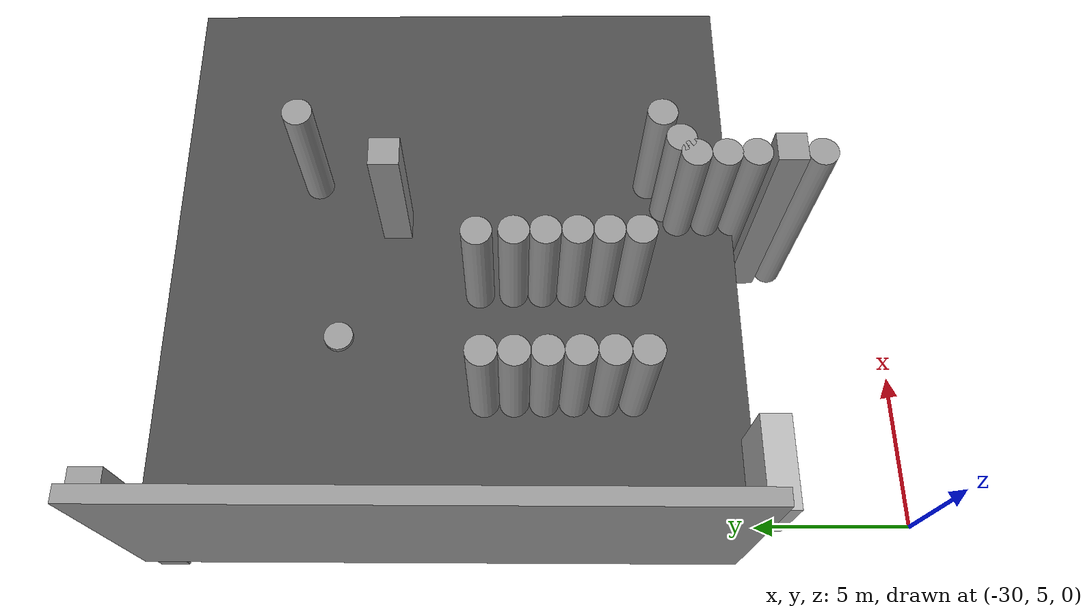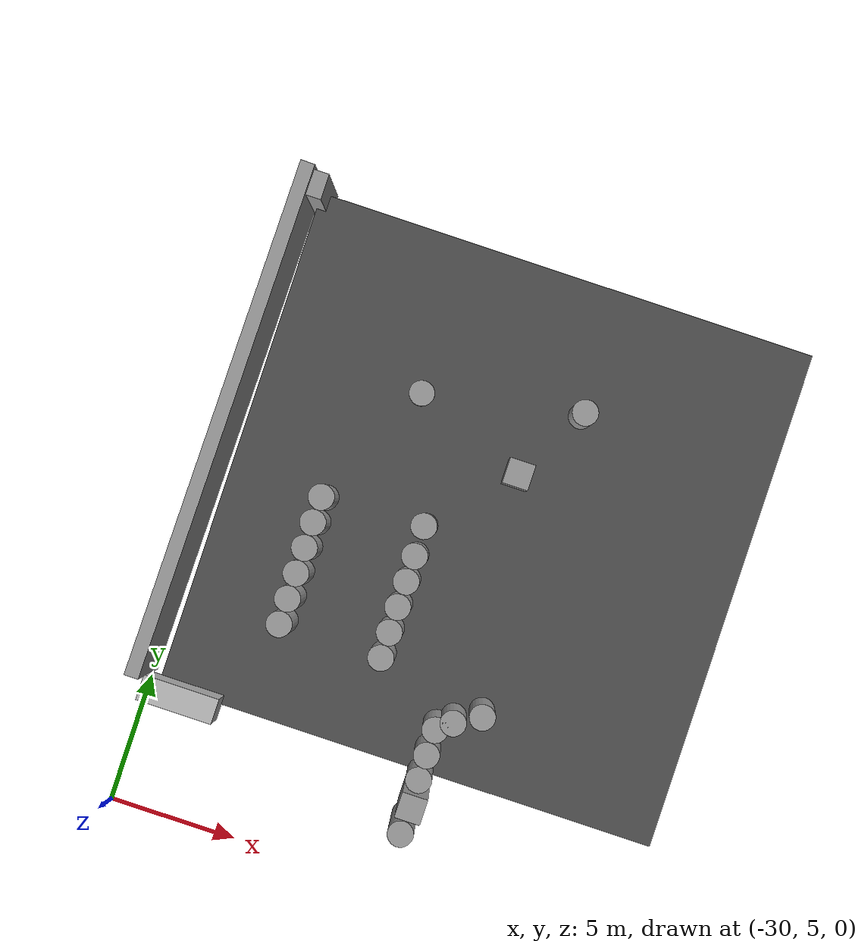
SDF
<sdf version="1.6">
 <model name="MW_world_1_0_0">
  <link name="link_0">
   <pose>-23.5387 23.6273 0.5 0 -0 0</pose>
   <inertial>
    <mass>0.190242</mass>
    <inertia>
     <ixx>0.0124639</ixx>
     <ixy>0</ixy>
     <ixz>0</ixz>
     <iyy>0.0124639</iyy>
     <iyz>0</iyz>
     <izz>0.0237802</izz>
    </inertia>
   </inertial>
   <visual name="visual">
    <geometry><cylinder><radius>0.5</radius><length>0.190241</length></cylinder></geometry>
    <material>
     <lighting>1</lighting>
     <script><uri>file://media/materials/scripts/gazebo.material</uri><name>Gazebo/Grey</name></script>
     <ambient>0.3 0.3 0.3 1</ambient>
     <diffuse>0.7 0.7 0.7 1</diffuse>
     <specular>0.01 0.01 0.01 1</specular>
     <emissive>0 0 0 1</emissive>
    </material>
   </visual>
   <collision name="collision">
    <geometry><cylinder><radius>0.5</radius><length>0.190241</length></cylinder></geometry>
    <surface>
     <friction>
      <ode><mu>1</mu><mu2>1</mu2><fdir1>0 0 0</fdir1><slip1>0</slip1><slip2>0</slip2></ode>
      <torsional>
       <coefficient>1</coefficient>
       <patch_radius>0</patch_radius>
       <surface_radius>0</surface_radius>
       <use_patch_radius>1</use_patch_radius>
       <ode><slip>0</slip></ode>
      </torsional>
     </friction>
     <bounce><restitution_coefficient>0</restitution_coefficient><threshold>1e+06</threshold></bounce>
     <contact>
      <collide_without_contact>0</collide_without_contact>
      <collide_without_contact_bitmask>1</collide_without_contact_bitmask>
      <collide_bitmask>1</collide_bitmask>
      <ode>
       <soft_cfm>0</soft_cfm>
       <soft_erp>0.2</soft_erp>
       <kp>1e+13</kp>
       <kd>1</kd>
       <max_vel>0.01</max_vel>
       <min_depth>0</min_depth>
      </ode>
      <bullet>
       <split_impulse>1</split_impulse>
       <split_impulse_penetration_threshold>-0.01</split_impulse_penetration_threshold>
       <soft_cfm>0</soft_cfm>
       <soft_erp>0.2</soft_erp>
       <kp>1e+13</kp>
       <kd>1</kd>
      </bullet>
     </contact>
    </surface>
   </collision>
  </link>
  <link name="link_0_0_clone_5_clone_0">
   <pose>-17.483 12.7321 0.5 0 -0 0</pose>
   <inertial>
    <mass>9.05819</mass>
    <inertia><ixx>62.5018</ixx><ixy>0</ixy><ixz>0</ixz><iyy>62.5018</iyy><iyz>0</iyz><izz>1.13227</izz></inertia>
   </inertial>
   <visual name="visual_0">
    <geometry><cylinder><radius>0.5</radius><length>9.05819</length></cylinder></geometry>
    <material>
     <lighting>1</lighting>
     <script><uri>file://media/materials/scripts/gazebo.material</uri><name>Gazebo/Grey</name></script>
     <ambient>0.3 0.3 0.3 1</ambient>
     <diffuse>0.7 0.7 0.7 1</diffuse>
     <specular>0.01 0.01 0.01 1</specular>
     <emissive>0 0 0 1</emissive>
     <shader type="pixel"/>
    </material>
   </visual>
   <collision name="collision">
    <geometry><cylinder><radius>0.5</radius><length>9.05819</length></cylinder></geometry>
    <surface>
     <friction>
      <ode><mu>1</mu><mu2>1</mu2><fdir1>0 0 0</fdir1><slip1>0</slip1><slip2>0</slip2></ode>
      <torsional>
       <coefficient>1</coefficient>
       <patch_radius>0</patch_radius>
       <surface_radius>0</surface_radius>
       <use_patch_radius>1</use_patch_radius>
       <ode><slip>0</slip></ode>
      </torsional>
     </friction>
     <bounce><restitution_coefficient>0</restitution_coefficient><threshold>1e+06</threshold></bounce>
     <contact>
      <collide_without_contact>0</collide_without_contact>
      <collide_without_contact_bitmask>1</collide_without_contact_bitmask>
      <collide_bitmask>1</collide_bitmask>
      <ode>
       <soft_cfm>0</soft_cfm>
       <soft_erp>0.2</soft_erp>
       <kp>1e+13</kp>
       <kd>1</kd>
       <max_vel>0.01</max_vel>
       <min_depth>0</min_depth>
      </ode>
      <bullet>
       <split_impulse>1</split_impulse>
       <split_impulse_penetration_threshold>-0.01</split_impulse_penetration_threshold>
       <soft_cfm>0</soft_cfm>
       <soft_erp>0.2</soft_erp>
       <kp>1e+13</kp>
       <kd>1</kd>
      </bullet>
     </contact>
    </surface>
   </collision>
  </link>
  <link name="link_0_0_clone_5_clone_1">
   <pose>-18.4513 12.18 0.5 0 -0 0</pose>
   <inertial>
    <mass>9.05819</mass>
    <inertia><ixx>62.5018</ixx><ixy>0</ixy><ixz>0</ixz><iyy>62.5018</iyy><iyz>0</iyz><izz>1.13227</izz></inertia>
   </inertial>
   <visual name="visual_0">
    <geometry><cylinder><radius>0.5</radius><length>9.05819</length></cylinder></geometry>
    <material>
     <lighting>1</lighting>
     <script><uri>file://media/materials/scripts/gazebo.material</uri><name>Gazebo/Grey</name></script>
     <ambient>0.3 0.3 0.3 1</ambient>
     <diffuse>0.7 0.7 0.7 1</diffuse>
     <specular>0.01 0.01 0.01 1</specular>
     <emissive>0 0 0 1</emissive>
     <shader type="pixel"/>
    </material>
   </visual>
   <collision name="collision">
    <geometry><cylinder><radius>0.5</radius><length>9.05819</length></cylinder></geometry>
    <surface>
     <friction>
      <ode><mu>1</mu><mu2>1</mu2><fdir1>0 0 0</fdir1><slip1>0</slip1><slip2>0</slip2></ode>
      <torsional>
       <coefficient>1</coefficient>
       <patch_radius>0</patch_radius>
       <surface_radius>0</surface_radius>
       <use_patch_radius>1</use_patch_radius>
       <ode><slip>0</slip></ode>
      </torsional>
     </friction>
     <bounce><restitution_coefficient>0</restitution_coefficient><threshold>1e+06</threshold></bounce>
     <contact>
      <collide_without_contact>0</collide_without_contact>
      <collide_without_contact_bitmask>1</collide_without_contact_bitmask>
      <collide_bitmask>1</collide_bitmask>
      <ode>
       <soft_cfm>0</soft_cfm>
       <soft_erp>0.2</soft_erp>
       <kp>1e+13</kp>
       <kd>1</kd>
       <max_vel>0.01</max_vel>
       <min_depth>0</min_depth>
      </ode>
      <bullet>
       <split_impulse>1</split_impulse>
       <split_impulse_penetration_threshold>-0.01</split_impulse_penetration_threshold>
       <soft_cfm>0</soft_cfm>
       <soft_erp>0.2</soft_erp>
       <kp>1e+13</kp>
       <kd>1</kd>
      </bullet>
     </contact>
    </surface>
   </collision>
  </link>
  <link name="link_0_0_clone_5_clone_16">
   <pose>-17.4246 24.7321 0.5 0 -0 0</pose>
   <inertial>
    <mass>9.05819</mass>
    <inertia><ixx>62.5018</ixx><ixy>0</ixy><ixz>0</ixz><iyy>62.5018</iyy><iyz>0</iyz><izz>1.13227</izz></inertia>
   </inertial>
   <visual name="visual_0">
    <geometry><cylinder><radius>0.5</radius><length>9.05819</length></cylinder></geometry>
    <material>
     <lighting>1</lighting>
     <script><uri>file://media/materials/scripts/gazebo.material</uri><name>Gazebo/Grey</name></script>
     <ambient>0.3 0.3 0.3 1</ambient>
     <diffuse>0.7 0.7 0.7 1</diffuse>
     <specular>0.01 0.01 0.01 1</specular>
     <emissive>0 0 0 1</emissive>
     <shader type="pixel"/>
    </material>
   </visual>
   <collision name="collision">
    <geometry><cylinder><radius>0.5</radius><length>9.05819</length></cylinder></geometry>
    <surface>
     <friction>
      <ode><mu>1</mu><mu2>1</mu2><fdir1>0 0 0</fdir1><slip1>0</slip1><slip2>0</slip2></ode>
      <torsional>
       <coefficient>1</coefficient>
       <patch_radius>0</patch_radius>
       <surface_radius>0</surface_radius>
       <use_patch_radius>1</use_patch_radius>
       <ode><slip>0</slip></ode>
      </torsional>
     </friction>
     <bounce><restitution_coefficient>0</restitution_coefficient><threshold>1e+06</threshold></bounce>
     <contact>
      <collide_without_contact>0</collide_without_contact>
      <collide_without_contact_bitmask>1</collide_without_contact_bitmask>
      <collide_bitmask>1</collide_bitmask>
      <ode>
       <soft_cfm>0</soft_cfm>
       <soft_erp>0.2</soft_erp>
       <kp>1e+13</kp>
       <kd>1</kd>
       <max_vel>0.01</max_vel>
       <min_depth>0</min_depth>
      </ode>
      <bullet>
       <split_impulse>1</split_impulse>
       <split_impulse_penetration_threshold>-0.01</split_impulse_penetration_threshold>
       <soft_cfm>0</soft_cfm>
       <soft_erp>0.2</soft_erp>
       <kp>1e+13</kp>
       <kd>1</kd>
      </bullet>
     </contact>
    </surface>
   </collision>
  </link>
  <link name="link_0_0_clone_5_clone_9">
   <pose>-19.0194 7.64675 0.5 0 -0 0</pose>
   <inertial>
    <mass>9.05819</mass>
    <inertia><ixx>62.5018</ixx><ixy>0</ixy><ixz>0</ixz><iyy>62.5018</iyy><iyz>0</iyz><izz>1.13227</izz></inertia>
   </inertial>
   <visual name="visual_0">
    <geometry><cylinder><radius>0.5</radius><length>9.05819</length></cylinder></geometry>
    <material>
     <lighting>1</lighting>
     <script><uri>file://media/materials/scripts/gazebo.material</uri><name>Gazebo/Grey</name></script>
     <ambient>0.3 0.3 0.3 1</ambient>
     <diffuse>0.7 0.7 0.7 1</diffuse>
     <specular>0.01 0.01 0.01 1</specular>
     <emissive>0 0 0 1</emissive>
     <shader type="pixel"/>
    </material>
   </visual>
   <collision name="collision">
    <geometry><cylinder><radius>0.5</radius><length>9.05819</length></cylinder></geometry>
    <surface>
     <friction>
      <ode><mu>1</mu><mu2>1</mu2><fdir1>0 0 0</fdir1><slip1>0</slip1><slip2>0</slip2></ode>
      <torsional>
       <coefficient>1</coefficient>
       <patch_radius>0</patch_radius>
       <surface_radius>0</surface_radius>
       <use_patch_radius>1</use_patch_radius>
       <ode><slip>0</slip></ode>
      </torsional>
     </friction>
     <bounce><restitution_coefficient>0</restitution_coefficient><threshold>1e+06</threshold></bounce>
     <contact>
      <collide_without_contact>0</collide_without_contact>
      <collide_without_contact_bitmask>1</collide_without_contact_bitmask>
      <collide_bitmask>1</collide_bitmask>
      <ode>
       <soft_cfm>0</soft_cfm>
       <soft_erp>0.2</soft_erp>
       <kp>1e+13</kp>
       <kd>1</kd>
       <max_vel>0.01</max_vel>
       <min_depth>0</min_depth>
      </ode>
      <bullet>
       <split_impulse>1</split_impulse>
       <split_impulse_penetration_threshold>-0.01</split_impulse_penetration_threshold>
       <soft_cfm>0</soft_cfm>
       <soft_erp>0.2</soft_erp>
       <kp>1e+13</kp>
       <kd>1</kd>
      </bullet>
     </contact>
    </surface>
   </collision>
  </link>
  <link name="link_0_0_clone_5_clone_9_clone_18">
   <pose>-19.0181 11.7321 0.5 0 -0 0</pose>
   <inertial>
    <mass>9.05819</mass>
    <inertia><ixx>62.5018</ixx><ixy>0</ixy><ixz>0</ixz><iyy>62.5018</iyy><iyz>0</iyz><izz>1.13227</izz></inertia>
   </inertial>
   <visual name="visual_0">
    <geometry><cylinder><radius>0.5</radius><length>9.05819</length></cylinder></geometry>
    <material>
     <lighting>1</lighting>
     <script><uri>file://media/materials/scripts/gazebo.material</uri><name>Gazebo/Grey</name></script>
     <ambient>0.3 0.3 0.3 1</ambient>
     <diffuse>0.7 0.7 0.7 1</diffuse>
     <specular>0.01 0.01 0.01 1</specular>
     <emissive>0 0 0 1</emissive>
     <shader type="pixel"/>
    </material>
   </visual>
   <collision name="collision">
    <geometry><cylinder><radius>0.5</radius><length>9.05819</length></cylinder></geometry>
    <surface>
     <friction>
      <ode><mu>1</mu><mu2>1</mu2><fdir1>0 0 0</fdir1><slip1>0</slip1><slip2>0</slip2></ode>
      <torsional>
       <coefficient>1</coefficient>
       <patch_radius>0</patch_radius>
       <surface_radius>0</surface_radius>
       <use_patch_radius>1</use_patch_radius>
       <ode><slip>0</slip></ode>
      </torsional>
     </friction>
     <bounce><restitution_coefficient>0</restitution_coefficient><threshold>1e+06</threshold></bounce>
     <contact>
      <collide_without_contact>0</collide_without_contact>
      <collide_without_contact_bitmask>1</collide_without_contact_bitmask>
      <collide_bitmask>1</collide_bitmask>
      <ode>
       <soft_cfm>0</soft_cfm>
       <soft_erp>0.2</soft_erp>
       <kp>1e+13</kp>
       <kd>1</kd>
       <max_vel>0.01</max_vel>
       <min_depth>0</min_depth>
      </ode>
      <bullet>
       <split_impulse>1</split_impulse>
       <split_impulse_penetration_threshold>-0.01</split_impulse_penetration_threshold>
       <soft_cfm>0</soft_cfm>
       <soft_erp>0.2</soft_erp>
       <kp>1e+13</kp>
       <kd>1</kd>
      </bullet>
     </contact>
    </surface>
   </collision>
  </link>
  <link name="link_0_0_clone_5_clone_9_clone_19">
   <pose>-19.0181 10.7321 0.5 0 -0 0</pose>
   <inertial>
    <mass>9.05819</mass>
    <inertia><ixx>62.5018</ixx><ixy>0</ixy><ixz>0</ixz><iyy>62.5018</iyy><iyz>0</iyz><izz>1.13227</izz></inertia>
   </inertial>
   <visual name="visual_0">
    <geometry><cylinder><radius>0.5</radius><length>9.05819</length></cylinder></geometry>
    <material>
     <lighting>1</lighting>
     <script><uri>file://media/materials/scripts/gazebo.material</uri><name>Gazebo/Grey</name></script>
     <ambient>0.3 0.3 0.3 1</ambient>
     <diffuse>0.7 0.7 0.7 1</diffuse>
     <specular>0.01 0.01 0.01 1</specular>
     <emissive>0 0 0 1</emissive>
     <shader type="pixel"/>
    </material>
   </visual>
   <collision name="collision">
    <geometry><cylinder><radius>0.5</radius><length>9.05819</length></cylinder></geometry>
    <surface>
     <friction>
      <ode><mu>1</mu><mu2>1</mu2><fdir1>0 0 0</fdir1><slip1>0</slip1><slip2>0</slip2></ode>
      <torsional>
       <coefficient>1</coefficient>
       <patch_radius>0</patch_radius>
       <surface_radius>0</surface_radius>
       <use_patch_radius>1</use_patch_radius>
       <ode><slip>0</slip></ode>
      </torsional>
     </friction>
     <bounce><restitution_coefficient>0</restitution_coefficient><threshold>1e+06</threshold></bounce>
     <contact>
      <collide_without_contact>0</collide_without_contact>
      <collide_without_contact_bitmask>1</collide_without_contact_bitmask>
      <collide_bitmask>1</collide_bitmask>
      <ode>
       <soft_cfm>0</soft_cfm>
       <soft_erp>0.2</soft_erp>
       <kp>1e+13</kp>
       <kd>1</kd>
       <max_vel>0.01</max_vel>
       <min_depth>0</min_depth>
      </ode>
      <bullet>
       <split_impulse>1</split_impulse>
       <split_impulse_penetration_threshold>-0.01</split_impulse_penetration_threshold>
       <soft_cfm>0</soft_cfm>
       <soft_erp>0.2</soft_erp>
       <kp>1e+13</kp>
       <kd>1</kd>
      </bullet>
     </contact>
    </surface>
   </collision>
  </link>
  <link name="link_0_0_clone_5_clone_9_clone_20">
   <pose>-19.0135 9.76944 0.5 0 -0 0</pose>
   <inertial>
    <mass>9.05819</mass>
    <inertia><ixx>62.5018</ixx><ixy>0</ixy><ixz>0</ixz><iyy>62.5018</iyy><iyz>0</iyz><izz>1.13227</izz></inertia>
   </inertial>
   <visual name="visual_0">
    <geometry><cylinder><radius>0.5</radius><length>9.05819</length></cylinder></geometry>
    <material>
     <lighting>1</lighting>
     <script><uri>file://media/materials/scripts/gazebo.material</uri><name>Gazebo/Grey</name></script>
     <ambient>0.3 0.3 0.3 1</ambient>
     <diffuse>0.7 0.7 0.7 1</diffuse>
     <specular>0.01 0.01 0.01 1</specular>
     <emissive>0 0 0 1</emissive>
     <shader type="pixel"/>
    </material>
   </visual>
   <collision name="collision">
    <geometry><cylinder><radius>0.5</radius><length>9.05819</length></cylinder></geometry>
    <surface>
     <friction>
      <ode><mu>1</mu><mu2>1</mu2><fdir1>0 0 0</fdir1><slip1>0</slip1><slip2>0</slip2></ode>
      <torsional>
       <coefficient>1</coefficient>
       <patch_radius>0</patch_radius>
       <surface_radius>0</surface_radius>
       <use_patch_radius>1</use_patch_radius>
       <ode><slip>0</slip></ode>
      </torsional>
     </friction>
     <bounce><restitution_coefficient>0</restitution_coefficient><threshold>1e+06</threshold></bounce>
     <contact>
      <collide_without_contact>0</collide_without_contact>
      <collide_without_contact_bitmask>1</collide_without_contact_bitmask>
      <collide_bitmask>1</collide_bitmask>
      <ode>
       <soft_cfm>0</soft_cfm>
       <soft_erp>0.2</soft_erp>
       <kp>1e+13</kp>
       <kd>1</kd>
       <max_vel>0.01</max_vel>
       <min_depth>0</min_depth>
      </ode>
      <bullet>
       <split_impulse>1</split_impulse>
       <split_impulse_penetration_threshold>-0.01</split_impulse_penetration_threshold>
       <soft_cfm>0</soft_cfm>
       <soft_erp>0.2</soft_erp>
       <kp>1e+13</kp>
       <kd>1</kd>
      </bullet>
     </contact>
    </surface>
   </collision>
  </link>
  <link name="link_0_0_clone_6">
   <pose>-21.8116 18.818 0.5 0 -0 0</pose>
   <inertial>
    <mass>9.05819</mass>
    <inertia><ixx>62.5018</ixx><ixy>0</ixy><ixz>0</ixz><iyy>62.5018</iyy><iyz>0</iyz><izz>1.13227</izz></inertia>
   </inertial>
   <visual name="visual_0">
    <geometry><cylinder><radius>0.5</radius><length>9.05819</length></cylinder></geometry>
    <material>
     <lighting>1</lighting>
     <script><uri>file://media/materials/scripts/gazebo.material</uri><name>Gazebo/Grey</name></script>
     <ambient>0.3 0.3 0.3 1</ambient>
     <diffuse>0.7 0.7 0.7 1</diffuse>
     <specular>0.01 0.01 0.01 1</specular>
     <emissive>0 0 0 1</emissive>
     <shader type="pixel"/>
    </material>
   </visual>
   <collision name="collision">
    <geometry><cylinder><radius>0.5</radius><length>9.05819</length></cylinder></geometry>
    <surface>
     <friction>
      <ode><mu>1</mu><mu2>1</mu2><fdir1>0 0 0</fdir1><slip1>0</slip1><slip2>0</slip2></ode>
      <torsional>
       <coefficient>1</coefficient>
       <patch_radius>0</patch_radius>
       <surface_radius>0</surface_radius>
       <use_patch_radius>1</use_patch_radius>
       <ode><slip>0</slip></ode>
      </torsional>
     </friction>
     <bounce><restitution_coefficient>0</restitution_coefficient><threshold>1e+06</threshold></bounce>
     <contact>
      <collide_without_contact>0</collide_without_contact>
      <collide_without_contact_bitmask>1</collide_without_contact_bitmask>
      <collide_bitmask>1</collide_bitmask>
      <ode>
       <soft_cfm>0</soft_cfm>
       <soft_erp>0.2</soft_erp>
       <kp>1e+13</kp>
       <kd>1</kd>
       <max_vel>0.01</max_vel>
       <min_depth>0</min_depth>
      </ode>
      <bullet>
       <split_impulse>1</split_impulse>
       <split_impulse_penetration_threshold>-0.01</split_impulse_penetration_threshold>
       <soft_cfm>0</soft_cfm>
       <soft_erp>0.2</soft_erp>
       <kp>1e+13</kp>
       <kd>1</kd>
      </bullet>
     </contact>
    </surface>
   </collision>
  </link>
  <link name="link_0_0_clone_6_clone">
   <pose>-25.7873 18.6456 0.5 0 -0 0</pose>
   <inertial>
    <mass>9.05819</mass>
    <inertia><ixx>62.5018</ixx><ixy>0</ixy><ixz>0</ixz><iyy>62.5018</iyy><iyz>0</iyz><izz>1.13227</izz></inertia>
   </inertial>
   <visual name="visual_0">
    <geometry><cylinder><radius>0.5</radius><length>9.05819</length></cylinder></geometry>
    <material>
     <lighting>1</lighting>
     <script><uri>file://media/materials/scripts/gazebo.material</uri><name>Gazebo/Grey</name></script>
     <ambient>0.3 0.3 0.3 1</ambient>
     <diffuse>0.7 0.7 0.7 1</diffuse>
     <specular>0.01 0.01 0.01 1</specular>
     <emissive>0 0 0 1</emissive>
     <shader type="pixel"/>
    </material>
   </visual>
   <collision name="collision">
    <geometry><cylinder><radius>0.5</radius><length>9.05819</length></cylinder></geometry>
    <surface>
     <friction>
      <ode><mu>1</mu><mu2>1</mu2><fdir1>0 0 0</fdir1><slip1>0</slip1><slip2>0</slip2></ode>
      <torsional>
       <coefficient>1</coefficient>
       <patch_radius>0</patch_radius>
       <surface_radius>0</surface_radius>
       <use_patch_radius>1</use_patch_radius>
       <ode><slip>0</slip></ode>
      </torsional>
     </friction>
     <bounce><restitution_coefficient>0</restitution_coefficient><threshold>1e+06</threshold></bounce>
     <contact>
      <collide_without_contact>0</collide_without_contact>
      <collide_without_contact_bitmask>1</collide_without_contact_bitmask>
      <collide_bitmask>1</collide_bitmask>
      <ode>
       <soft_cfm>0</soft_cfm>
       <soft_erp>0.2</soft_erp>
       <kp>1e+13</kp>
       <kd>1</kd>
       <max_vel>0.01</max_vel>
       <min_depth>0</min_depth>
      </ode>
      <bullet>
       <split_impulse>1</split_impulse>
       <split_impulse_penetration_threshold>-0.01</split_impulse_penetration_threshold>
       <soft_cfm>0</soft_cfm>
       <soft_erp>0.2</soft_erp>
       <kp>1e+13</kp>
       <kd>1</kd>
      </bullet>
     </contact>
    </surface>
   </collision>
  </link>
  <link name="link_0_0_clone_6_clone_0">
   <pose>-25.7873 13.6456 0.5 0 -0 0</pose>
   <inertial>
    <mass>9.05819</mass>
    <inertia><ixx>62.5018</ixx><ixy>0</ixy><ixz>0</ixz><iyy>62.5018</iyy><iyz>0</iyz><izz>1.13227</izz></inertia>
   </inertial>
   <visual name="visual_0">
    <geometry><cylinder><radius>0.5</radius><length>9.05819</length></cylinder></geometry>
    <material>
     <lighting>1</lighting>
     <script><uri>file://media/materials/scripts/gazebo.material</uri><name>Gazebo/Grey</name></script>
     <ambient>0.3 0.3 0.3 1</ambient>
     <diffuse>0.7 0.7 0.7 1</diffuse>
     <specular>0.01 0.01 0.01 1</specular>
     <emissive>0 0 0 1</emissive>
     <shader type="pixel"/>
    </material>
   </visual>
   <collision name="collision">
    <geometry><cylinder><radius>0.5</radius><length>9.05819</length></cylinder></geometry>
    <surface>
     <friction>
      <ode><mu>1</mu><mu2>1</mu2><fdir1>0 0 0</fdir1><slip1>0</slip1><slip2>0</slip2></ode>
      <torsional>
       <coefficient>1</coefficient>
       <patch_radius>0</patch_radius>
       <surface_radius>0</surface_radius>
       <use_patch_radius>1</use_patch_radius>
       <ode><slip>0</slip></ode>
      </torsional>
     </friction>
     <bounce><restitution_coefficient>0</restitution_coefficient><threshold>1e+06</threshold></bounce>
     <contact>
      <collide_without_contact>0</collide_without_contact>
      <collide_without_contact_bitmask>1</collide_without_contact_bitmask>
      <collide_bitmask>1</collide_bitmask>
      <ode>
       <soft_cfm>0</soft_cfm>
       <soft_erp>0.2</soft_erp>
       <kp>1e+13</kp>
       <kd>1</kd>
       <max_vel>0.01</max_vel>
       <min_depth>0</min_depth>
      </ode>
      <bullet>
       <split_impulse>1</split_impulse>
       <split_impulse_penetration_threshold>-0.01</split_impulse_penetration_threshold>
       <soft_cfm>0</soft_cfm>
       <soft_erp>0.2</soft_erp>
       <kp>1e+13</kp>
       <kd>1</kd>
      </bullet>
     </contact>
    </surface>
   </collision>
  </link>
  <link name="link_0_0_clone_6_clone_1">
   <pose>-21.7873 13.6456 0.5 0 -0 0</pose>
   <inertial>
    <mass>9.05819</mass>
    <inertia><ixx>62.5018</ixx><ixy>0</ixy><ixz>0</ixz><iyy>62.5018</iyy><iyz>0</iyz><izz>1.13227</izz></inertia>
   </inertial>
   <visual name="visual_0">
    <geometry><cylinder><radius>0.5</radius><length>9.05819</length></cylinder></geometry>
    <material>
     <lighting>1</lighting>
     <script><uri>file://media/materials/scripts/gazebo.material</uri><name>Gazebo/Grey</name></script>
     <ambient>0.3 0.3 0.3 1</ambient>
     <diffuse>0.7 0.7 0.7 1</diffuse>
     <specular>0.01 0.01 0.01 1</specular>
     <emissive>0 0 0 1</emissive>
     <shader type="pixel"/>
    </material>
   </visual>
   <collision name="collision">
    <geometry><cylinder><radius>0.5</radius><length>9.05819</length></cylinder></geometry>
    <surface>
     <friction>
      <ode><mu>1</mu><mu2>1</mu2><fdir1>0 0 0</fdir1><slip1>0</slip1><slip2>0</slip2></ode>
      <torsional>
       <coefficient>1</coefficient>
       <patch_radius>0</patch_radius>
       <surface_radius>0</surface_radius>
       <use_patch_radius>1</use_patch_radius>
       <ode><slip>0</slip></ode>
      </torsional>
     </friction>
     <bounce><restitution_coefficient>0</restitution_coefficient><threshold>1e+06</threshold></bounce>
     <contact>
      <collide_without_contact>0</collide_without_contact>
      <collide_without_contact_bitmask>1</collide_without_contact_bitmask>
      <collide_bitmask>1</collide_bitmask>
      <ode>
       <soft_cfm>0</soft_cfm>
       <soft_erp>0.2</soft_erp>
       <kp>1e+13</kp>
       <kd>1</kd>
       <max_vel>0.01</max_vel>
       <min_depth>0</min_depth>
      </ode>
      <bullet>
       <split_impulse>1</split_impulse>
       <split_impulse_penetration_threshold>-0.01</split_impulse_penetration_threshold>
       <soft_cfm>0</soft_cfm>
       <soft_erp>0.2</soft_erp>
       <kp>1e+13</kp>
       <kd>1</kd>
      </bullet>
     </contact>
    </surface>
   </collision>
  </link>
  <link name="link_0_0_clone_6_clone_clone">
   <pose>-25.7873 17.6456 0.5 0 -0 0</pose>
   <inertial>
    <mass>9.05819</mass>
    <inertia><ixx>62.5018</ixx><ixy>0</ixy><ixz>0</ixz><iyy>62.5018</iyy><iyz>0</iyz><izz>1.13227</izz></inertia>
   </inertial>
   <visual name="visual_0">
    <geometry><cylinder><radius>0.5</radius><length>9.05819</length></cylinder></geometry>
    <material>
     <lighting>1</lighting>
     <script><uri>file://media/materials/scripts/gazebo.material</uri><name>Gazebo/Grey</name></script>
     <ambient>0.3 0.3 0.3 1</ambient>
     <diffuse>0.7 0.7 0.7 1</diffuse>
     <specular>0.01 0.01 0.01 1</specular>
     <emissive>0 0 0 1</emissive>
     <shader type="pixel"/>
    </material>
   </visual>
   <collision name="collision">
    <geometry><cylinder><radius>0.5</radius><length>9.05819</length></cylinder></geometry>
    <surface>
     <friction>
      <ode><mu>1</mu><mu2>1</mu2><fdir1>0 0 0</fdir1><slip1>0</slip1><slip2>0</slip2></ode>
      <torsional>
       <coefficient>1</coefficient>
       <patch_radius>0</patch_radius>
       <surface_radius>0</surface_radius>
       <use_patch_radius>1</use_patch_radius>
       <ode><slip>0</slip></ode>
      </torsional>
     </friction>
     <bounce><restitution_coefficient>0</restitution_coefficient><threshold>1e+06</threshold></bounce>
     <contact>
      <collide_without_contact>0</collide_without_contact>
      <collide_without_contact_bitmask>1</collide_without_contact_bitmask>
      <collide_bitmask>1</collide_bitmask>
      <ode>
       <soft_cfm>0</soft_cfm>
       <soft_erp>0.2</soft_erp>
       <kp>1e+13</kp>
       <kd>1</kd>
       <max_vel>0.01</max_vel>
       <min_depth>0</min_depth>
      </ode>
      <bullet>
       <split_impulse>1</split_impulse>
       <split_impulse_penetration_threshold>-0.01</split_impulse_penetration_threshold>
       <soft_cfm>0</soft_cfm>
       <soft_erp>0.2</soft_erp>
       <kp>1e+13</kp>
       <kd>1</kd>
      </bullet>
     </contact>
    </surface>
   </collision>
  </link>
  <link name="link_0_0_clone_6_clone_clone_0">
   <pose>-25.7873 16.6456 0.5 0 -0 0</pose>
   <inertial>
    <mass>9.05819</mass>
    <inertia><ixx>62.5018</ixx><ixy>0</ixy><ixz>0</ixz><iyy>62.5018</iyy><iyz>0</iyz><izz>1.13227</izz></inertia>
   </inertial>
   <visual name="visual_0">
    <geometry><cylinder><radius>0.5</radius><length>9.05819</length></cylinder></geometry>
    <material>
     <lighting>1</lighting>
     <script><uri>file://media/materials/scripts/gazebo.material</uri><name>Gazebo/Grey</name></script>
     <ambient>0.3 0.3 0.3 1</ambient>
     <diffuse>0.7 0.7 0.7 1</diffuse>
     <specular>0.01 0.01 0.01 1</specular>
     <emissive>0 0 0 1</emissive>
     <shader type="pixel"/>
    </material>
   </visual>
   <collision name="collision">
    <geometry><cylinder><radius>0.5</radius><length>9.05819</length></cylinder></geometry>
    <surface>
     <friction>
      <ode><mu>1</mu><mu2>1</mu2><fdir1>0 0 0</fdir1><slip1>0</slip1><slip2>0</slip2></ode>
      <torsional>
       <coefficient>1</coefficient>
       <patch_radius>0</patch_radius>
       <surface_radius>0</surface_radius>
       <use_patch_radius>1</use_patch_radius>
       <ode><slip>0</slip></ode>
      </torsional>
     </friction>
     <bounce><restitution_coefficient>0</restitution_coefficient><threshold>1e+06</threshold></bounce>
     <contact>
      <collide_without_contact>0</collide_without_contact>
      <collide_without_contact_bitmask>1</collide_without_contact_bitmask>
      <collide_bitmask>1</collide_bitmask>
      <ode>
       <soft_cfm>0</soft_cfm>
       <soft_erp>0.2</soft_erp>
       <kp>1e+13</kp>
       <kd>1</kd>
       <max_vel>0.01</max_vel>
       <min_depth>0</min_depth>
      </ode>
      <bullet>
       <split_impulse>1</split_impulse>
       <split_impulse_penetration_threshold>-0.01</split_impulse_penetration_threshold>
       <soft_cfm>0</soft_cfm>
       <soft_erp>0.2</soft_erp>
       <kp>1e+13</kp>
       <kd>1</kd>
      </bullet>
     </contact>
    </surface>
   </collision>
  </link>
  <link name="link_0_0_clone_6_clone_clone_1">
   <pose>-25.7873 15.6456 0.5 0 -0 0</pose>
   <inertial>
    <mass>9.05819</mass>
    <inertia><ixx>62.5018</ixx><ixy>0</ixy><ixz>0</ixz><iyy>62.5018</iyy><iyz>0</iyz><izz>1.13227</izz></inertia>
   </inertial>
   <visual name="visual_0">
    <geometry><cylinder><radius>0.5</radius><length>9.05819</length></cylinder></geometry>
    <material>
     <lighting>1</lighting>
     <script><uri>file://media/materials/scripts/gazebo.material</uri><name>Gazebo/Grey</name></script>
     <ambient>0.3 0.3 0.3 1</ambient>
     <diffuse>0.7 0.7 0.7 1</diffuse>
     <specular>0.01 0.01 0.01 1</specular>
     <emissive>0 0 0 1</emissive>
     <shader type="pixel"/>
    </material>
   </visual>
   <collision name="collision">
    <geometry><cylinder><radius>0.5</radius><length>9.05819</length></cylinder></geometry>
    <surface>
     <friction>
      <ode><mu>1</mu><mu2>1</mu2><fdir1>0 0 0</fdir1><slip1>0</slip1><slip2>0</slip2></ode>
      <torsional>
       <coefficient>1</coefficient>
       <patch_radius>0</patch_radius>
       <surface_radius>0</surface_radius>
       <use_patch_radius>1</use_patch_radius>
       <ode><slip>0</slip></ode>
      </torsional>
     </friction>
     <bounce><restitution_coefficient>0</restitution_coefficient><threshold>1e+06</threshold></bounce>
     <contact>
      <collide_without_contact>0</collide_without_contact>
      <collide_without_contact_bitmask>1</collide_without_contact_bitmask>
      <collide_bitmask>1</collide_bitmask>
      <ode>
       <soft_cfm>0</soft_cfm>
       <soft_erp>0.2</soft_erp>
       <kp>1e+13</kp>
       <kd>1</kd>
       <max_vel>0.01</max_vel>
       <min_depth>0</min_depth>
      </ode>
      <bullet>
       <split_impulse>1</split_impulse>
       <split_impulse_penetration_threshold>-0.01</split_impulse_penetration_threshold>
       <soft_cfm>0</soft_cfm>
       <soft_erp>0.2</soft_erp>
       <kp>1e+13</kp>
       <kd>1</kd>
      </bullet>
     </contact>
    </surface>
   </collision>
  </link>
  <link name="link_0_0_clone_6_clone_clone_2">
   <pose>-25.7873 14.6456 0.5 0 -0 0</pose>
   <inertial>
    <mass>9.05819</mass>
    <inertia><ixx>62.5018</ixx><ixy>0</ixy><ixz>0</ixz><iyy>62.5018</iyy><iyz>0</iyz><izz>1.13227</izz></inertia>
   </inertial>
   <visual name="visual_0">
    <geometry><cylinder><radius>0.5</radius><length>9.05819</length></cylinder></geometry>
    <material>
     <lighting>1</lighting>
     <script><uri>file://media/materials/scripts/gazebo.material</uri><name>Gazebo/Grey</name></script>
     <ambient>0.3 0.3 0.3 1</ambient>
     <diffuse>0.7 0.7 0.7 1</diffuse>
     <specular>0.01 0.01 0.01 1</specular>
     <emissive>0 0 0 1</emissive>
     <shader type="pixel"/>
    </material>
   </visual>
   <collision name="collision">
    <geometry><cylinder><radius>0.5</radius><length>9.05819</length></cylinder></geometry>
    <surface>
     <friction>
      <ode><mu>1</mu><mu2>1</mu2><fdir1>0 0 0</fdir1><slip1>0</slip1><slip2>0</slip2></ode>
      <torsional>
       <coefficient>1</coefficient>
       <patch_radius>0</patch_radius>
       <surface_radius>0</surface_radius>
       <use_patch_radius>1</use_patch_radius>
       <ode><slip>0</slip></ode>
      </torsional>
     </friction>
     <bounce><restitution_coefficient>0</restitution_coefficient><threshold>1e+06</threshold></bounce>
     <contact>
      <collide_without_contact>0</collide_without_contact>
      <collide_without_contact_bitmask>1</collide_without_contact_bitmask>
      <collide_bitmask>1</collide_bitmask>
      <ode>
       <soft_cfm>0</soft_cfm>
       <soft_erp>0.2</soft_erp>
       <kp>1e+13</kp>
       <kd>1</kd>
       <max_vel>0.01</max_vel>
       <min_depth>0</min_depth>
      </ode>
      <bullet>
       <split_impulse>1</split_impulse>
       <split_impulse_penetration_threshold>-0.01</split_impulse_penetration_threshold>
       <soft_cfm>0</soft_cfm>
       <soft_erp>0.2</soft_erp>
       <kp>1e+13</kp>
       <kd>1</kd>
      </bullet>
     </contact>
    </surface>
   </collision>
  </link>
  <link name="link_0_0_clone_6_clone_clone_3">
   <pose>-21.7873 17.6456 0.5 0 -0 0</pose>
   <inertial>
    <mass>9.05819</mass>
    <inertia><ixx>62.5018</ixx><ixy>0</ixy><ixz>0</ixz><iyy>62.5018</iyy><iyz>0</iyz><izz>1.13227</izz></inertia>
   </inertial>
   <visual name="visual_0">
    <geometry><cylinder><radius>0.5</radius><length>9.05819</length></cylinder></geometry>
    <material>
     <lighting>1</lighting>
     <script><uri>file://media/materials/scripts/gazebo.material</uri><name>Gazebo/Grey</name></script>
     <ambient>0.3 0.3 0.3 1</ambient>
     <diffuse>0.7 0.7 0.7 1</diffuse>
     <specular>0.01 0.01 0.01 1</specular>
     <emissive>0 0 0 1</emissive>
     <shader type="pixel"/>
    </material>
   </visual>
   <collision name="collision">
    <geometry><cylinder><radius>0.5</radius><length>9.05819</length></cylinder></geometry>
    <surface>
     <friction>
      <ode><mu>1</mu><mu2>1</mu2><fdir1>0 0 0</fdir1><slip1>0</slip1><slip2>0</slip2></ode>
      <torsional>
       <coefficient>1</coefficient>
       <patch_radius>0</patch_radius>
       <surface_radius>0</surface_radius>
       <use_patch_radius>1</use_patch_radius>
       <ode><slip>0</slip></ode>
      </torsional>
     </friction>
     <bounce><restitution_coefficient>0</restitution_coefficient><threshold>1e+06</threshold></bounce>
     <contact>
      <collide_without_contact>0</collide_without_contact>
      <collide_without_contact_bitmask>1</collide_without_contact_bitmask>
      <collide_bitmask>1</collide_bitmask>
      <ode>
       <soft_cfm>0</soft_cfm>
       <soft_erp>0.2</soft_erp>
       <kp>1e+13</kp>
       <kd>1</kd>
       <max_vel>0.01</max_vel>
       <min_depth>0</min_depth>
      </ode>
      <bullet>
       <split_impulse>1</split_impulse>
       <split_impulse_penetration_threshold>-0.01</split_impulse_penetration_threshold>
       <soft_cfm>0</soft_cfm>
       <soft_erp>0.2</soft_erp>
       <kp>1e+13</kp>
       <kd>1</kd>
      </bullet>
     </contact>
    </surface>
   </collision>
  </link>
  <link name="link_0_0_clone_6_clone_clone_4">
   <pose>-21.7873 16.6456 0.5 0 -0 0</pose>
   <inertial>
    <mass>9.05819</mass>
    <inertia><ixx>62.5018</ixx><ixy>0</ixy><ixz>0</ixz><iyy>62.5018</iyy><iyz>0</iyz><izz>1.13227</izz></inertia>
   </inertial>
   <visual name="visual_0">
    <geometry><cylinder><radius>0.5</radius><length>9.05819</length></cylinder></geometry>
    <material>
     <lighting>1</lighting>
     <script><uri>file://media/materials/scripts/gazebo.material</uri><name>Gazebo/Grey</name></script>
     <ambient>0.3 0.3 0.3 1</ambient>
     <diffuse>0.7 0.7 0.7 1</diffuse>
     <specular>0.01 0.01 0.01 1</specular>
     <emissive>0 0 0 1</emissive>
     <shader type="pixel"/>
    </material>
   </visual>
   <collision name="collision">
    <geometry><cylinder><radius>0.5</radius><length>9.05819</length></cylinder></geometry>
    <surface>
     <friction>
      <ode><mu>1</mu><mu2>1</mu2><fdir1>0 0 0</fdir1><slip1>0</slip1><slip2>0</slip2></ode>
      <torsional>
       <coefficient>1</coefficient>
       <patch_radius>0</patch_radius>
       <surface_radius>0</surface_radius>
       <use_patch_radius>1</use_patch_radius>
       <ode><slip>0</slip></ode>
      </torsional>
     </friction>
     <bounce><restitution_coefficient>0</restitution_coefficient><threshold>1e+06</threshold></bounce>
     <contact>
      <collide_without_contact>0</collide_without_contact>
      <collide_without_contact_bitmask>1</collide_without_contact_bitmask>
      <collide_bitmask>1</collide_bitmask>
      <ode>
       <soft_cfm>0</soft_cfm>
       <soft_erp>0.2</soft_erp>
       <kp>1e+13</kp>
       <kd>1</kd>
       <max_vel>0.01</max_vel>
       <min_depth>0</min_depth>
      </ode>
      <bullet>
       <split_impulse>1</split_impulse>
       <split_impulse_penetration_threshold>-0.01</split_impulse_penetration_threshold>
       <soft_cfm>0</soft_cfm>
       <soft_erp>0.2</soft_erp>
       <kp>1e+13</kp>
       <kd>1</kd>
      </bullet>
     </contact>
    </surface>
   </collision>
  </link>
  <link name="link_0_0_clone_6_clone_clone_5">
   <pose>-21.7873 15.6456 0.5 0 -0 0</pose>
   <inertial>
    <mass>9.05819</mass>
    <inertia><ixx>62.5018</ixx><ixy>0</ixy><ixz>0</ixz><iyy>62.5018</iyy><iyz>0</iyz><izz>1.13227</izz></inertia>
   </inertial>
   <visual name="visual_0">
    <geometry><cylinder><radius>0.5</radius><length>9.05819</length></cylinder></geometry>
    <material>
     <lighting>1</lighting>
     <script><uri>file://media/materials/scripts/gazebo.material</uri><name>Gazebo/Grey</name></script>
     <ambient>0.3 0.3 0.3 1</ambient>
     <diffuse>0.7 0.7 0.7 1</diffuse>
     <specular>0.01 0.01 0.01 1</specular>
     <emissive>0 0 0 1</emissive>
     <shader type="pixel"/>
    </material>
   </visual>
   <collision name="collision">
    <geometry><cylinder><radius>0.5</radius><length>9.05819</length></cylinder></geometry>
    <surface>
     <friction>
      <ode><mu>1</mu><mu2>1</mu2><fdir1>0 0 0</fdir1><slip1>0</slip1><slip2>0</slip2></ode>
      <torsional>
       <coefficient>1</coefficient>
       <patch_radius>0</patch_radius>
       <surface_radius>0</surface_radius>
       <use_patch_radius>1</use_patch_radius>
       <ode><slip>0</slip></ode>
      </torsional>
     </friction>
     <bounce><restitution_coefficient>0</restitution_coefficient><threshold>1e+06</threshold></bounce>
     <contact>
      <collide_without_contact>0</collide_without_contact>
      <collide_without_contact_bitmask>1</collide_without_contact_bitmask>
      <collide_bitmask>1</collide_bitmask>
      <ode>
       <soft_cfm>0</soft_cfm>
       <soft_erp>0.2</soft_erp>
       <kp>1e+13</kp>
       <kd>1</kd>
       <max_vel>0.01</max_vel>
       <min_depth>0</min_depth>
      </ode>
      <bullet>
       <split_impulse>1</split_impulse>
       <split_impulse_penetration_threshold>-0.01</split_impulse_penetration_threshold>
       <soft_cfm>0</soft_cfm>
       <soft_erp>0.2</soft_erp>
       <kp>1e+13</kp>
       <kd>1</kd>
      </bullet>
     </contact>
    </surface>
   </collision>
  </link>
  <link name="link_0_0_clone_6_clone_clone_6">
   <pose>-21.7873 14.6456 0.5 0 -0 0</pose>
   <inertial>
    <mass>9.05819</mass>
    <inertia><ixx>62.5018</ixx><ixy>0</ixy><ixz>0</ixz><iyy>62.5018</iyy><iyz>0</iyz><izz>1.13227</izz></inertia>
   </inertial>
   <visual name="visual_0">
    <geometry><cylinder><radius>0.5</radius><length>9.05819</length></cylinder></geometry>
    <material>
     <lighting>1</lighting>
     <script><uri>file://media/materials/scripts/gazebo.material</uri><name>Gazebo/Grey</name></script>
     <ambient>0.3 0.3 0.3 1</ambient>
     <diffuse>0.7 0.7 0.7 1</diffuse>
     <specular>0.01 0.01 0.01 1</specular>
     <emissive>0 0 0 1</emissive>
     <shader type="pixel"/>
    </material>
   </visual>
   <collision name="collision">
    <geometry><cylinder><radius>0.5</radius><length>9.05819</length></cylinder></geometry>
    <surface>
     <friction>
      <ode><mu>1</mu><mu2>1</mu2><fdir1>0 0 0</fdir1><slip1>0</slip1><slip2>0</slip2></ode>
      <torsional>
       <coefficient>1</coefficient>
       <patch_radius>0</patch_radius>
       <surface_radius>0</surface_radius>
       <use_patch_radius>1</use_patch_radius>
       <ode><slip>0</slip></ode>
      </torsional>
     </friction>
     <bounce><restitution_coefficient>0</restitution_coefficient><threshold>1e+06</threshold></bounce>
     <contact>
      <collide_without_contact>0</collide_without_contact>
      <collide_without_contact_bitmask>1</collide_without_contact_bitmask>
      <collide_bitmask>1</collide_bitmask>
      <ode>
       <soft_cfm>0</soft_cfm>
       <soft_erp>0.2</soft_erp>
       <kp>1e+13</kp>
       <kd>1</kd>
       <max_vel>0.01</max_vel>
       <min_depth>0</min_depth>
      </ode>
      <bullet>
       <split_impulse>1</split_impulse>
       <split_impulse_penetration_threshold>-0.01</split_impulse_penetration_threshold>
       <soft_cfm>0</soft_cfm>
       <soft_erp>0.2</soft_erp>
       <kp>1e+13</kp>
       <kd>1</kd>
      </bullet>
     </contact>
    </surface>
   </collision>
  </link>
  <link name="link_0_clone_clone_0_clone_4">
   <pose>-29.7873 29.6456 0.5 0 -0 0</pose>
   <inertial>
    <mass>9.47467</mass>
    <inertia><ixx>71.6676</ixx><ixy>0</ixy><ixz>0</ixz><iyy>71.6676</iyy><iyz>0</iyz><izz>1.57911</izz></inertia>
   </inertial>
   <visual name="visual">
    <geometry><box><size>1 1 9.47467</size></box></geometry>
    <material>
     <lighting>1</lighting>
     <script><uri>file://media/materials/scripts/gazebo.material</uri><name>Gazebo/Grey</name></script>
     <ambient>0.3 0.3 0.3 1</ambient>
     <diffuse>0.7 0.7 0.7 1</diffuse>
     <specular>0.01 0.01 0.01 1</specular>
     <emissive>0 0 0 1</emissive>
     <shader type="pixel"/>
    </material>
   </visual>
   <collision name="collision">
    <geometry><box><size>1 1 9.47467</size></box></geometry>
    <surface>
     <friction>
      <ode><mu>1</mu><mu2>1</mu2><fdir1>0 0 0</fdir1><slip1>0</slip1><slip2>0</slip2></ode>
      <torsional>
       <coefficient>1</coefficient>
       <patch_radius>0</patch_radius>
       <surface_radius>0</surface_radius>
       <use_patch_radius>1</use_patch_radius>
       <ode><slip>0</slip></ode>
      </torsional>
     </friction>
     <bounce><restitution_coefficient>0</restitution_coefficient><threshold>1e+06</threshold></bounce>
     <contact>
      <collide_without_contact>0</collide_without_contact>
      <collide_without_contact_bitmask>1</collide_without_contact_bitmask>
      <collide_bitmask>1</collide_bitmask>
      <ode>
       <soft_cfm>0</soft_cfm>
       <soft_erp>0.2</soft_erp>
       <kp>1e+13</kp>
       <kd>1</kd>
       <max_vel>0.01</max_vel>
       <min_depth>0</min_depth>
      </ode>
      <bullet>
       <split_impulse>1</split_impulse>
       <split_impulse_penetration_threshold>-0.01</split_impulse_penetration_threshold>
       <soft_cfm>0</soft_cfm>
       <soft_erp>0.2</soft_erp>
       <kp>1e+13</kp>
       <kd>1</kd>
      </bullet>
     </contact>
    </surface>
   </collision>
  </link>
  <link name="link_0_clone_clone_1_clone_1_clone_1">
   <pose>-19.0543 21.7876 0.5 0 -0 0</pose>
   <inertial>
    <mass>9.47467</mass>
    <inertia><ixx>71.6676</ixx><ixy>0</ixy><ixz>0</ixz><iyy>71.6676</iyy><iyz>0</iyz><izz>1.57911</izz></inertia>
   </inertial>
   <visual name="visual">
    <geometry><box><size>1 1 9.47467</size></box></geometry>
    <material>
     <lighting>1</lighting>
     <script><uri>file://media/materials/scripts/gazebo.material</uri><name>Gazebo/Grey</name></script>
     <ambient>0.3 0.3 0.3 1</ambient>
     <diffuse>0.7 0.7 0.7 1</diffuse>
     <specular>0.01 0.01 0.01 1</specular>
     <emissive>0 0 0 1</emissive>
     <shader type="pixel"/>
    </material>
   </visual>
   <collision name="collision">
    <geometry><box><size>1 1 9.47467</size></box></geometry>
    <surface>
     <friction>
      <ode><mu>1</mu><mu2>1</mu2><fdir1>0 0 0</fdir1><slip1>0</slip1><slip2>0</slip2></ode>
      <torsional>
       <coefficient>1</coefficient>
       <patch_radius>0</patch_radius>
       <surface_radius>0</surface_radius>
       <use_patch_radius>1</use_patch_radius>
       <ode><slip>0</slip></ode>
      </torsional>
     </friction>
     <bounce><restitution_coefficient>0</restitution_coefficient><threshold>1e+06</threshold></bounce>
     <contact>
      <collide_without_contact>0</collide_without_contact>
      <collide_without_contact_bitmask>1</collide_without_contact_bitmask>
      <collide_bitmask>1</collide_bitmask>
      <ode>
       <soft_cfm>0</soft_cfm>
       <soft_erp>0.2</soft_erp>
       <kp>1e+13</kp>
       <kd>1</kd>
       <max_vel>0.01</max_vel>
       <min_depth>0</min_depth>
      </ode>
      <bullet>
       <split_impulse>1</split_impulse>
       <split_impulse_penetration_threshold>-0.01</split_impulse_penetration_threshold>
       <soft_cfm>0</soft_cfm>
       <soft_erp>0.2</soft_erp>
       <kp>1e+13</kp>
       <kd>1</kd>
      </bullet>
     </contact>
    </surface>
   </collision>
  </link>
  <link name="link_0_clone_clone_clone_6">
   <pose>-18.9419 8.68936 0.5 0 -0 0</pose>
   <inertial>
    <mass>9.47467</mass>
    <inertia><ixx>71.6676</ixx><ixy>0</ixy><ixz>0</ixz><iyy>71.6676</iyy><iyz>0</iyz><izz>1.57911</izz></inertia>
   </inertial>
   <visual name="visual">
    <geometry><box><size>1 1 9.47467</size></box></geometry>
    <material>
     <lighting>1</lighting>
     <script><uri>file://media/materials/scripts/gazebo.material</uri><name>Gazebo/Grey</name></script>
     <ambient>0.3 0.3 0.3 1</ambient>
     <diffuse>0.7 0.7 0.7 1</diffuse>
     <specular>0.01 0.01 0.01 1</specular>
     <emissive>0 0 0 1</emissive>
     <shader type="pixel"/>
    </material>
   </visual>
   <collision name="collision">
    <geometry><box><size>1 1 9.47467</size></box></geometry>
    <surface>
     <friction>
      <ode><mu>1</mu><mu2>1</mu2><fdir1>0 0 0</fdir1><slip1>0</slip1><slip2>0</slip2></ode>
      <torsional>
       <coefficient>1</coefficient>
       <patch_radius>0</patch_radius>
       <surface_radius>0</surface_radius>
       <use_patch_radius>1</use_patch_radius>
       <ode><slip>0</slip></ode>
      </torsional>
     </friction>
     <bounce><restitution_coefficient>0</restitution_coefficient><threshold>1e+06</threshold></bounce>
     <contact>
      <collide_without_contact>0</collide_without_contact>
      <collide_without_contact_bitmask>1</collide_without_contact_bitmask>
      <collide_bitmask>1</collide_bitmask>
      <ode>
       <soft_cfm>0</soft_cfm>
       <soft_erp>0.2</soft_erp>
       <kp>1e+13</kp>
       <kd>1</kd>
       <max_vel>0.01</max_vel>
       <min_depth>0</min_depth>
      </ode>
      <bullet>
       <split_impulse>1</split_impulse>
       <split_impulse_penetration_threshold>-0.01</split_impulse_penetration_threshold>
       <soft_cfm>0</soft_cfm>
       <soft_erp>0.2</soft_erp>
       <kp>1e+13</kp>
       <kd>1</kd>
      </bullet>
     </contact>
    </surface>
   </collision>
  </link>
  <model name="asphalt_plane_clone_0_clone">
   <static>1</static>
   <link name="link">
    <collision name="collision"><geometry><box><size>20 20 0.1</size></box></geometry></collision>
    <visual name="visual">
     <cast_shadows>0</cast_shadows>
     <geometry><box><size>20 20 0.1</size></box></geometry>
     <material>
      <script>
       <uri>model://asphalt_plane/materials/scripts</uri>
       <uri>model://asphalt_plane/materials/textures</uri>
       <name>vrc/asphalt</name>
      </script>
     </material>
    </visual>
   </link>
   <pose>-19.6601 19.7683 0 0 -0 0</pose>
  </model>
  <model name="brick_box_3x1x3_clone_0">
   <static>1</static>
   <link name="chassis">
    <pose>0 0 1.5 0 -0 0</pose>
    <collision name="collision"><geometry><box><size>3 1 3</size></box></geometry></collision>
    <visual name="visual">
     <geometry><mesh><uri>model://brick_box_3x1x3/meshes/simple_box.dae</uri><scale>3 1 3</scale></mesh></geometry>
     <material>
      <script>
       <uri>model://brick_box_3x1x3/materials/scripts</uri>
       <uri>model://brick_box_3x1x3/materials/textures</uri>
       <name>BrickBox/Diffuse</name>
      </script>
     </material>
    </visual>
   </link>
   <pose>-28.6166 9.63113 0 0 -0 0</pose>
  </model>
  <model name="grey_wall_mw_clone_3_clone">
   <link name="link">
    <pose>-8.81665 -2.69351 1.4 0 -0 0</pose>
    <inertial>
     <inertia><ixx>nan</ixx><ixy>0</ixy><ixz>0</ixz><iyy>nan</iyy><iyz>0</iyz><izz>nan</izz></inertia>
     <mass>0</mass>
    </inertial>
    <visual name="visual">
     <cast_shadows>0</cast_shadows>
     <geometry><box><size>20.2056 0.556506 8.63552</size></box></geometry>
     <material>
      <script>
       <uri>model://grey_wall/materials/scripts</uri>
       <uri>model://grey_wall/materials/textures</uri>
       <name>vrc/grey_wall</name>
      </script>
      <ambient>1 1 1 1</ambient>
      <diffuse>1 1 1 1</diffuse>
      <specular>0 0 0 1</specular>
      <emissive>0 0 0 1</emissive>
     </material>
    </visual>
    <collision name="collision">
     <geometry><box><size>20.2056 0.556506 8.63552</size></box></geometry>
     <surface>
      <friction>
       <ode><mu>1</mu><mu2>1</mu2><fdir1>0 0 0</fdir1><slip1>0</slip1><slip2>0</slip2></ode>
       <torsional>
        <coefficient>1</coefficient>
        <patch_radius>0</patch_radius>
        <surface_radius>0</surface_radius>
        <use_patch_radius>1</use_patch_radius>
        <ode><slip>0</slip></ode>
       </torsional>
      </friction>
      <bounce><restitution_coefficient>0</restitution_coefficient><threshold>1e+06</threshold></bounce>
      <contact>
       <collide_without_contact>0</collide_without_contact>
       <collide_without_contact_bitmask>1</collide_without_contact_bitmask>
       <collide_bitmask>1</collide_bitmask>
       <ode>
        <soft_cfm>0</soft_cfm>
        <soft_erp>0.2</soft_erp>
        <kp>1e+13</kp>
        <kd>1</kd>
        <max_vel>0.01</max_vel>
        <min_depth>0</min_depth>
       </ode>
       <bullet>
        <split_impulse>1</split_impulse>
        <split_impulse_penetration_threshold>-0.01</split_impulse_penetration_threshold>
        <soft_cfm>0</soft_cfm>
        <soft_erp>0.2</soft_erp>
        <kp>1e+13</kp>
        <kd>1</kd>
       </bullet>
      </contact>
     </surface>
    </collision>
   </link>
   <static>1</static>
   <pose>-27.6457 11.3472 0 0 0 -1.58073</pose>
  </model>
  <static>1</static>
 </model>
</sdf>
